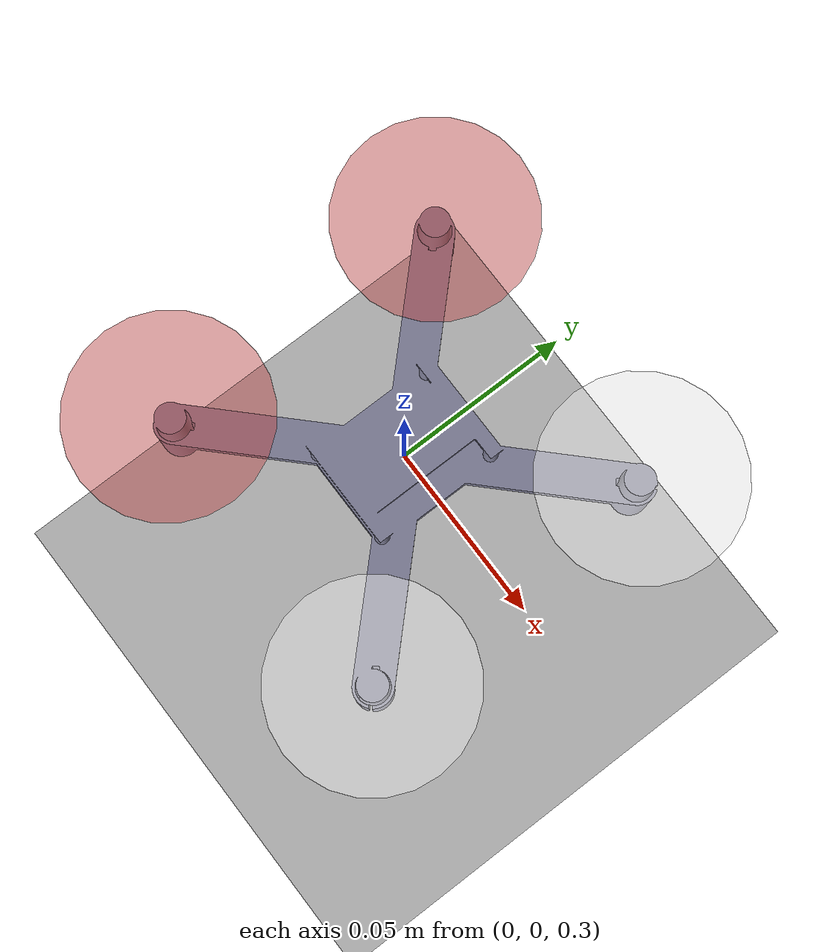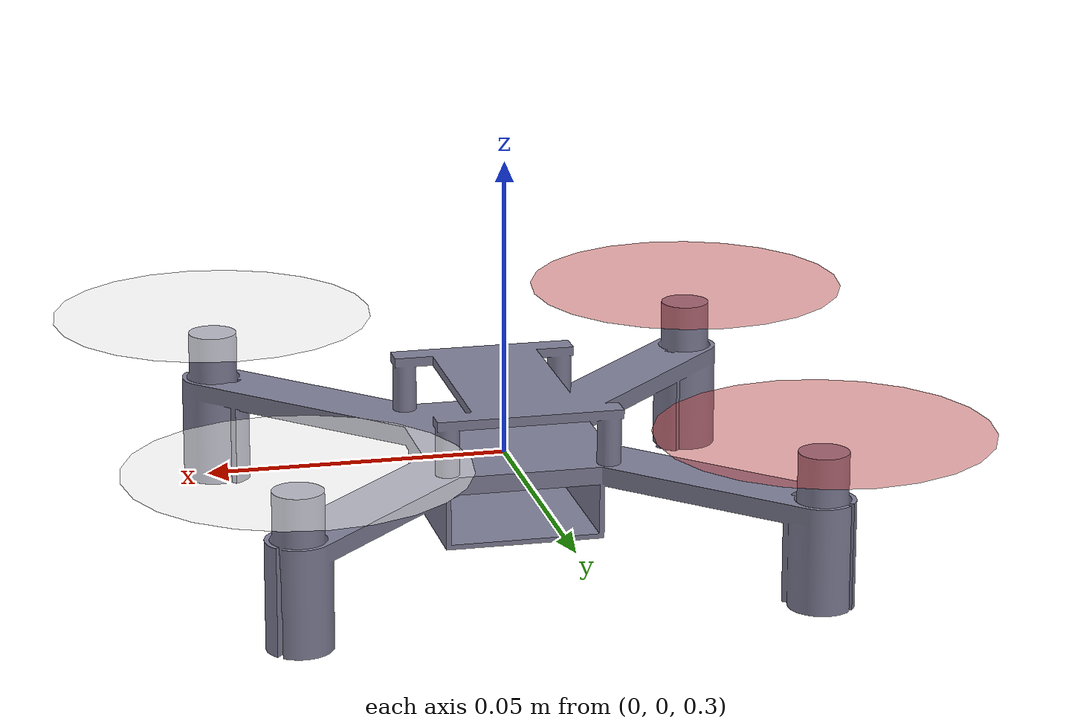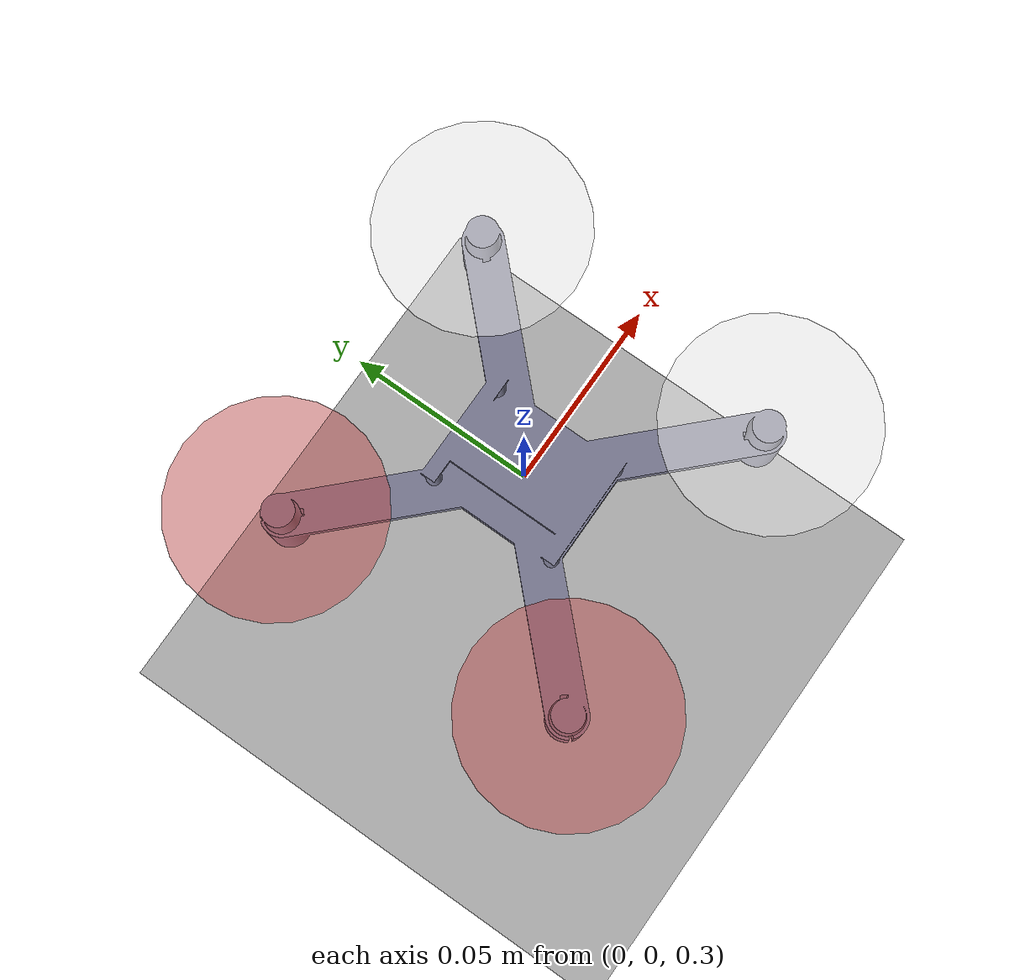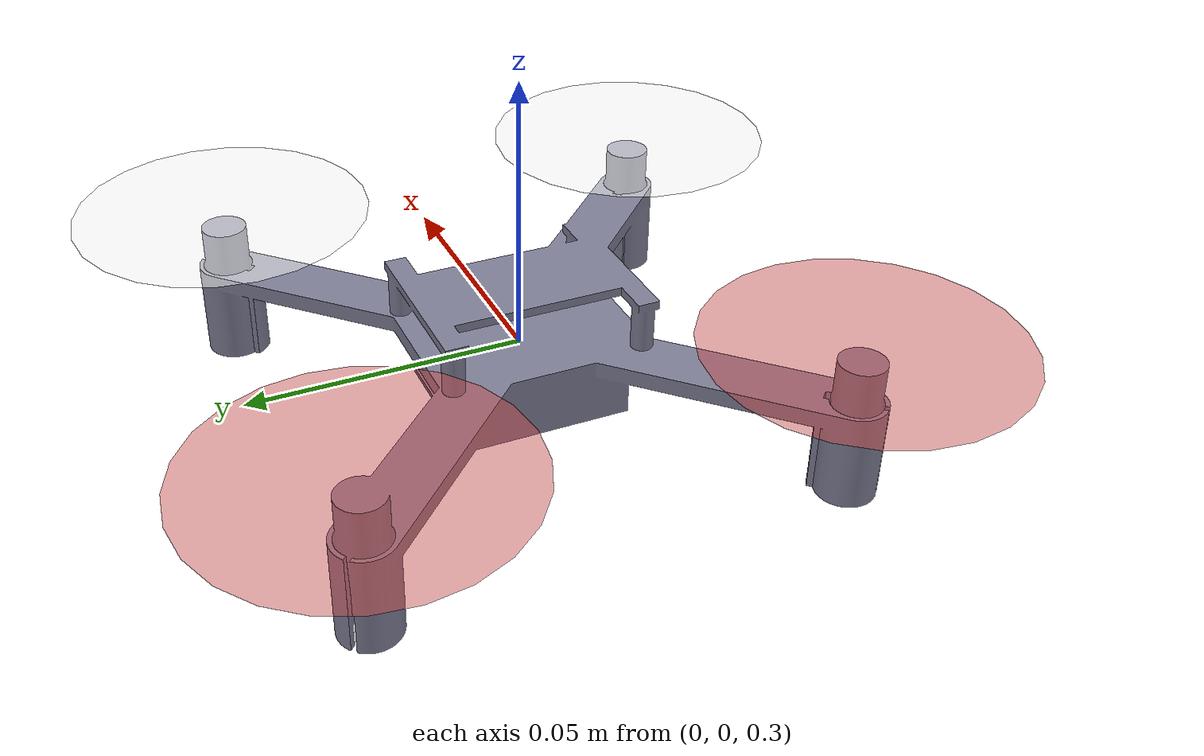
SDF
<?xml version="1.0"?>
<sdf version="1.4">
	<world name="default">
		<scene>
			<ambient>1 1 1 1</ambient>
			<sky/>
			<origin_visual>false</origin_visual>
			<grid>false</grid>
		</scene>
		<gui>
			<camera name="user_camera">
				<pose>-2 -0.3 1.5 0 0.5 0.1</pose>
			</camera>
		</gui>
		<physics type="ode">
			<max_step_size>0.001</max_step_size>
		</physics>
		<include>
			<uri>model://floor</uri>
		</include>
		<include>
			<uri>model://sun</uri>
		</include>
		<include>
			<uri>model://flix</uri>
			<pose>0 0 0.3 0 0 0</pose>
		</include>
	</world>
</sdf>

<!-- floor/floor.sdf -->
<sdf version="1.5">
  <model name="floor">
    <static>true</static>
    <link name="link">
      <pose>0 0 -0.02 0 0 0</pose>
      <collision name="collision">
        <geometry>
          <box>
            <size>200 200 .02</size>
          </box>
        </geometry>
      </collision>
      <visual name="visual">
        <cast_shadows>false</cast_shadows>
        <geometry>
          <box>
            <size>200 200 .02</size>
          </box>
        </geometry>
        <material>
          <script>
            <uri>model://floor/materials/scripts</uri>
            <uri>model://floor/materials/textures</uri>
            <name>parquet</name>
          </script>
        </material>
      </visual>
    </link>
  </model>
</sdf>

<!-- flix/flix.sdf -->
<sdf version="1.5">
	<model name="flix">
		<link name="body">
			<inertial>
				<mass>0.065</mass>
				<inertia>
					<ixx>3.55E-5</ixx>
					<iyy>4.23E-5</iyy>
					<izz>7.47E-5</izz>
				</inertia>
			</inertial>
			<collision name="collision">
				<geometry>
					<box>
						<size>0.095 0.095 0.0276</size>
					</box>
				</geometry>
			</collision>
			<sensor name="imu" type="imu">
				<always_on>1</always_on>
				<visualize>1</visualize>
				<update_rate>1000</update_rate>
				<imu>
					<angular_velocity>
						<x>
							<noise type="gaussian">
								<stddev>0.00174533</stddev><!-- 0.1 degrees per second -->
							</noise>
						</x>
						<y>
							<noise type="gaussian">
								<stddev>0.00174533</stddev>
							</noise>
						</y>
						<z>
							<noise type="gaussian">
								<stddev>0.00174533</stddev>
							</noise>
						</z>
					</angular_velocity>
					<linear_acceleration>
						<x>
							<noise type="gaussian">
								<stddev>0.0784</stddev><!-- 8 mg -->
							</noise>
						</x>
						<y>
							<noise type="gaussian">
								<stddev>0.0784</stddev>
							</noise>
						</y>
						<z>
							<noise type="gaussian">
								<stddev>0.0784</stddev>
							</noise>
						</z>
					</linear_acceleration>
				</imu>
			</sensor>
			<visual name="body">
				<geometry>
					<mesh><uri>model://flix/flix.stl</uri></mesh>
				</geometry>
				<material>
					<ambient>0.5 0.5 0.6 1</ambient>
					<diffuse>0.5 0.5 0.6 1</diffuse>
					<specular>0 0 0 1</specular>
					<emissive>0 0 0 1</emissive>
				</material>
			</visual>
			<visual name="prop0"><!-- rear left -->
				<geometry><cylinder><radius>0.0275</radius><length>0</length></cylinder></geometry>
				<pose>-0.04243 0.04243 0.0142 0 0 0</pose>
				<material><ambient>0.8 0.3 0.3 0.5</ambient><diffuse>0.8 0.3 0.3 0.5</diffuse></material>
			</visual>
			<visual name="prop1"><!-- rear right -->
				<geometry><cylinder><radius>0.0275</radius><length>0</length></cylinder></geometry>
				<pose>-0.04243 -0.04243 0.0142 0 0 0</pose>
				<material><ambient>0.8 0.3 0.3 0.5</ambient><diffuse>0.8 0.3 0.3 0.5</diffuse></material>
			</visual>
			<visual name="prop2"><!-- front right -->
				<geometry><cylinder><radius>0.0275</radius><length>0</length></cylinder></geometry>
				<pose>0.04243 -0.04243 0.0142 0 0 0</pose>
				<material><ambient>1 1 1 0.5</ambient><diffuse>1 1 1 0.5</diffuse></material>
			</visual>
			<visual name="prop3"><!-- front left -->
				<geometry><cylinder><radius>0.0275</radius><length>0</length></cylinder></geometry>
				<pose>0.04243 0.04243 0.0142 0 0 0</pose>
				<material><ambient>1 1 1 0.5</ambient><diffuse>1 1 1 0.5</diffuse></material>
			</visual>
		</link>
		<plugin name="flix" filename="libflix.so"/>
	</model>
</sdf>
